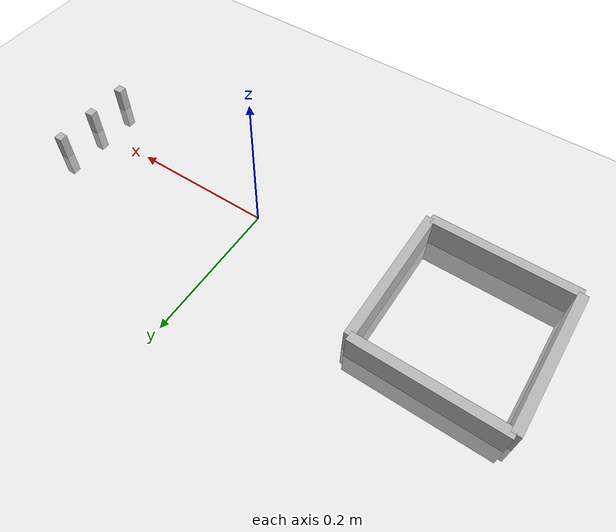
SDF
<?xml version="1.0"?>
<sdf version="1.4">

	<world name="default">
		<include>
			<uri>model://sun</uri>
		</include>
		<include>
			<uri>model://ground_plane</uri>
		</include>

		<physics type="ode">
			<real_time_update_rate>1000.0</real_time_update_rate>
			<gravity>0.0 0.0 -9.81</gravity>
		</physics>

		<!-- The box model | might need to be refractored -->
		<model name="my_model">
			<pose>0.3 0 0 0 0 0</pose>
			<static>false</static>
			<link name="box">
				<inertial>
					<mass>10</mass>
					<inertia>
						<ixx>0.00009375</ixx>
						<ixy>0.0</ixy>
						<ixz>0.0</ixz>
						<iyy>0.000483</iyy>
						<iyz>0.0</iyz>
						<izz>0.00009375</izz>
					</inertia>
				</inertial>
				<collision name="collision">
					<geometry>
						<box>
							<size>0.012 0.012 0.07</size>
						</box>
					</geometry>
					<surface>
						<bounce>
							<restitution_coefficient>0</restitution_coefficient>
						</bounce>
					</surface>
				</collision>
				<visual name="visual">
					<geometry>
						<box>
							<size>0.012 0.012 0.07</size>
						</box>
					</geometry>
					<surface>
						<bounce>
							<restitution_coefficient>0</restitution_coefficient>
						</bounce>
						<friction>
							<ode>
								<kp>200</kp>
								<kd>1.0</kd>
								<mu>100.0</mu>
								<max_vel>0.5 </max_vel>
								<mu2>1.0</mu2>
								<slip1>0</slip1>
								<slip2>0</slip2>
								<minDepth>0.01</minDepth>
							</ode>
						</friction>
					</surface>
				</visual>
			</link>
		</model>

		<model name="my_model2">
			<pose>0.3 0.06 0 0 0 0</pose>
			<static>false</static>
			<link name="box2">
				<inertial>
					<mass>10</mass>
					<inertia>
						<ixx>0.00009375</ixx>
						<ixy>0.0</ixy>
						<ixz>0.0</ixz>
						<iyy>0.000483</iyy>
						<iyz>0.0</iyz>
						<izz>0.00009375</izz>
					</inertia>
				</inertial>
				<collision name="collision">
					<geometry>
						<box>
							<size>0.012 0.012 0.07</size>
						</box>
					</geometry>
					<surface>
						<bounce>
							<restitution_coefficient>0</restitution_coefficient>
						</bounce>
					</surface>
				</collision>
				<visual name="visual">
					<geometry>
						<box>
							<size>0.012 0.012 0.07</size>
						</box>
					</geometry>
					<surface>
						<bounce>
							<restitution_coefficient>0</restitution_coefficient>
						</bounce>
						<friction>
							<ode>
								<kp>200</kp>
								<kd>1.0</kd>
								<mu>100.0</mu>
								<max_vel>0.5 </max_vel>
								<mu2>1.0</mu2>
								<slip1>0</slip1>
								<slip2>0</slip2>
								<minDepth>0.01</minDepth>
							</ode>
						</friction>
					</surface>

				</visual>
			</link>
		</model>

		<model name="my_model4">
			<pose>0.3 -0.06 0 0 0 0</pose>
			<static>false</static>
			<link name="box3">
				<inertial>
					<mass>10</mass>
					<inertia>
						<ixx>0.00009375</ixx>
						<ixy>0.0</ixy>
						<ixz>0.0</ixz>
						<iyy>0.000483</iyy>
						<iyz>0.0</iyz>
						<izz>0.00009375</izz>
					</inertia>
				</inertial>
				<collision name="collision">
					<geometry>
						<box>
							<size>0.012 0.012 0.07</size>
						</box>
					</geometry>
					<surface>
						<bounce>
							<restitution_coefficient>0</restitution_coefficient>
						</bounce>
					</surface>
				</collision>
				<visual name="visual">
					<geometry>
						<box>
							<size>0.012 0.012 0.07</size>
						</box>
					</geometry>
					<surface>
						<bounce>
							<restitution_coefficient>0</restitution_coefficient>
						</bounce>
						<friction>
							<ode>
								<kp>200</kp>
								<kd>1.0</kd>
								<mu>100.0</mu>
								<max_vel>0.5 </max_vel>
								<mu2>1.0</mu2>
								<slip1>0</slip1>
								<slip2>0</slip2>
								<minDepth>0.01</minDepth>
							</ode>
						</friction>
					</surface>

				</visual>
			</link>
		</model>

		<!-- box sides -->
		<model name="box_side1">
			<pose>-0.4 0 0 0 0 0</pose>
			<static>true</static>
			<link name="box_side1">
				<inertial>
					<mass>10</mass>
				</inertial>
				<collision name="collision">
					<geometry>
						<box>
							<size>0.013 0.2 0.08</size>
						</box>
					</geometry>
					<surface>
						<bounce>
							<restitution_coefficient>0</restitution_coefficient>
						</bounce>
					</surface>
				</collision>
				<visual name="visual">
					<geometry>
						<box>
							<size>0.013 0.2 0.08</size>
						</box>
					</geometry>
				</visual>
			</link>
		</model>

		<model name="box_side2">
			<pose>-0.2 0 0 0 0 0</pose>
			<static>true</static>
			<link name="box_side2">
				<inertial>
					<mass>10</mass>
				</inertial>
				<collision name="collision">
					<geometry>
						<box>
							<size>0.013 0.2 0.08</size>
						</box>
					</geometry>
					<surface>
						<bounce>
							<restitution_coefficient>0</restitution_coefficient>
						</bounce>
					</surface>
				</collision>
				<visual name="visual">
					<geometry>
						<box>
							<size>0.013 0.2 0.08</size>
						</box>
					</geometry>
				</visual>
			</link>
		</model>

		<model name="box_side3">
			<pose>-0.3 0.1 0 0 0 0</pose>
			<static>true</static>
			<link name="box_side3">
				<inertial>
					<mass>10</mass>
				</inertial>
				<collision name="collision">
					<geometry>
						<box>
							<size>0.15 0.013 0.08</size>
						</box>
					</geometry>
					<surface>
						<bounce>
							<restitution_coefficient>0</restitution_coefficient>
						</bounce>
					</surface>
				</collision>
				<visual name="visual">
					<geometry>
						<box>
							<size>0.2 0.013 0.08</size>
						</box>
					</geometry>
				</visual>
			</link>
		</model>

		<model name="box_side4">
			<pose>-0.3 -0.1 0 0 0 0</pose>
			<static>true</static>
			<link name="box_side4">
				<inertial>
					<mass>10</mass>
				</inertial>
				<collision name="collision">
					<geometry>
						<box>
							<size>0.15 0.013 0.08</size>
						</box>
					</geometry>
					<surface>
						<bounce>
							<restitution_coefficient>0</restitution_coefficient>
						</bounce>
					</surface>
				</collision>
				<visual name="visual">
					<geometry>
						<box>
							<size>0.2 0.013 0.08</size>
						</box>
					</geometry>
				</visual>
			</link>
		</model>
		<gazebo reference="box">
			<implicitSpringDamper>1</implicitSpringDamper>
			<mu1>100.0</mu1>
			<mu2>1.0</mu2>
			<fdir1>-1 0 0</fdir1>
			<minDepth>0.01</minDepth>
		</gazebo>

	</world>
</sdf>
